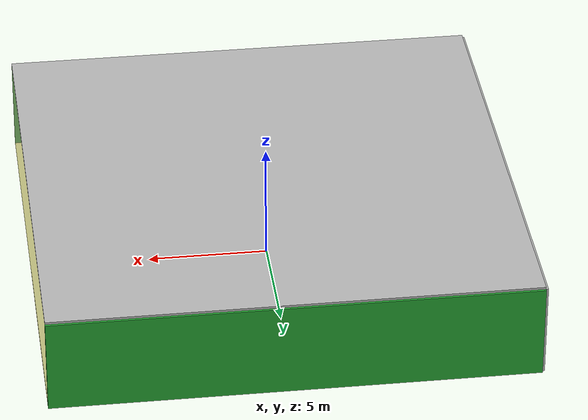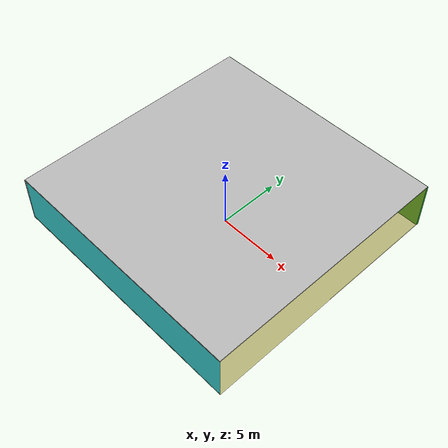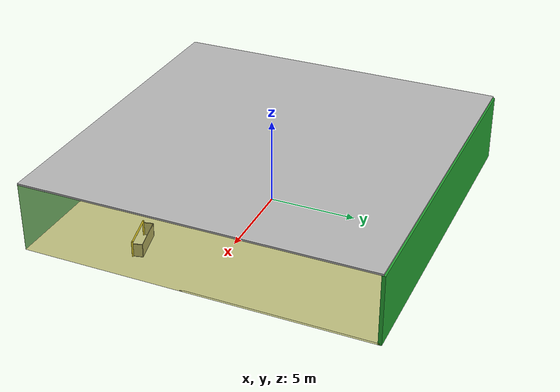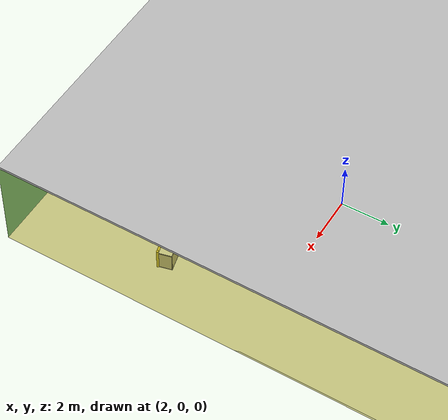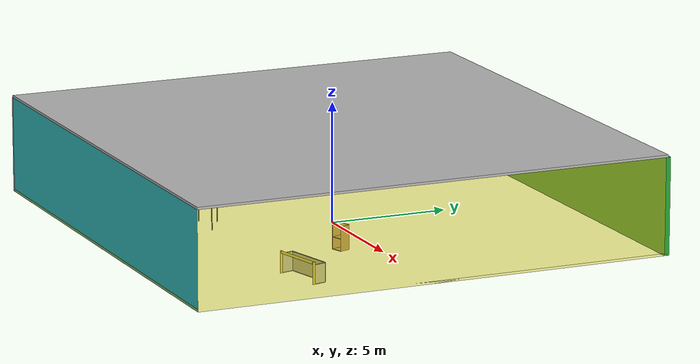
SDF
<sdf version="1.4">
 <world name="default">
  <physics type="ode">
   <max_step_size>0.001</max_step_size>
   <real_time_factor>1</real_time_factor>
   <real_time_update_rate>1000</real_time_update_rate>
   <gravity>0 0 -9.8</gravity>
  </physics>
  <scene><ambient>0.4 0.4 0.4 1</ambient><background>0.7 0.7 0.7 1</background><shadows>1</shadows></scene>
  <model name="Surrounding">
   <static>1</static>
   <link name="Ceiling">
    <collision name="Ceiling_Collision"><geometry><box><size>20 20 0.1</size></box></geometry></collision>
    <visual name="Ceiling_Visual">
     <geometry><box><size>20 20 0.1</size></box></geometry>
     <material>
      <script><uri>file://media/materials/scripts/gazebo.material</uri><name>Gazebo/CloudySky</name></script>
     </material>
    </visual>
    <pose>0 0 4.05 0 0 0</pose>
   </link>
   <link name="Wall_South">
    <collision name="Wall_South_Collision">
     <geometry><box><size>20 0 4</size></box></geometry>
     <pose>0 0 2 0 -0 0</pose>
    </collision>
    <visual name="Wall_South_Visual">
     <pose>0 0 2 0 -0 0</pose>
     <geometry><box><size>20 0 4</size></box></geometry>
     <material>
      <script>
       <uri>file://media/materials/scripts/gazebo.material</uri>
       <name>Gazebo/TurquoiseGlowOutline</name>
      </script>
     </material>
    </visual>
    <velocity_decay><linear>0</linear><angular>0</angular></velocity_decay>
    <pose>0 -10 0 0 -0 0</pose>
   </link>
   <link name="Wall_East">
    <collision name="Wall_21_Collision">
     <geometry><box><size>20 0 4</size></box></geometry>
     <pose>0 0 2 0 -0 0</pose>
    </collision>
    <visual name="Wall_21_Visual">
     <pose>0 0 2 0 -0 0</pose>
     <geometry><box><size>20 0 4</size></box></geometry>
     <material>
      <script>
       <uri>file://media/materials/scripts/gazebo.material</uri>
       <name>Gazebo/YellowTransparent</name>
      </script>
     </material>
    </visual>
    <velocity_decay><linear>0</linear><angular>0</angular></velocity_decay>
    <pose>10 0 0 0 -0 1.5708</pose>
   </link>
   <link name="Wall_North">
    <collision name="Wall_22_Collision">
     <geometry><box><size>20 0.2 4</size></box></geometry>
     <pose>0 0 2 0 -0 0</pose>
    </collision>
    <visual name="Wall_22_Visual">
     <pose>0 0 2 0 -0 0</pose>
     <geometry><box><size>20 0.2 4</size></box></geometry>
     <material>
      <script><uri>file://media/materials/scripts/gazebo.material</uri><name>Gazebo/GreenGlow</name></script>
     </material>
    </visual>
    <velocity_decay><linear>0</linear><angular>0</angular></velocity_decay>
    <pose>0 10 0 0 -0 0</pose>
   </link>
   <link name="Wall_West">
    <collision name="Wall_23_Collision">
     <geometry><box><size>20 0.2 4</size></box></geometry>
     <pose>0 0 2 0 -0 0</pose>
    </collision>
    <visual name="Wall_23_Visual">
     <pose>0 0 2 0 -0 0</pose>
     <geometry><box><size>20 0.2 4</size></box></geometry>
     <material>
      <script><uri>file://media/materials/scripts/gazebo.material</uri><name>Gazebo/Pioneer2Body</name></script>
     </material>
    </visual>
    <velocity_decay><linear>0</linear><angular>0</angular></velocity_decay>
    <pose>-10 0 0 0 0 -1.5708</pose>
   </link>
   <link name="Ground_link">
    <collision name="collision">
     <pose>0 0 .05 0 -0 0</pose>
     <geometry><box><size>20 20 0.1</size></box></geometry>
    </collision>
    <visual name="visual">
     <pose>0 0 .05 0 -0 0</pose>
     <geometry><box><size>20 20 0.1</size></box></geometry>
     <material>
      <script>
       <uri>file://media/materials/scripts/gazebo.material</uri>
       <name>Gazebo/YellowTransparent</name>
      </script>
     </material>
    </visual>
   </link>
   <static>1</static>
  </model>
  <spherical_coordinates>
   <surface_model>EARTH_WGS84</surface_model>
   <latitude_deg>0</latitude_deg>
   <longitude_deg>0</longitude_deg>
   <elevation>0</elevation>
   <heading_deg>0</heading_deg>
  </spherical_coordinates>
  <light name="lightball_0" type="diffuse">
   <diffuse>0.8 0.8 0.8 1</diffuse>
   <specular>0.2 0.2 0.2 1</specular>
   <attenuation>
    <range>100</range>
    <constant>0.7</constant>
    <linear>0.01</linear>
    <quadratic>0.001</quadratic>
   </attenuation>
   <direction>-0.5 0.1 -0.9</direction>
   <pose>-3.38998854018 3.83963972761 0.895900617495 0 0 0</pose>
  </light>
  <light name="lightball_1" type="diffuse">
   <diffuse>0.8 0.8 0.8 1</diffuse>
   <specular>0.2 0.2 0.2 1</specular>
   <attenuation>
    <range>100</range>
    <constant>0.7</constant>
    <linear>0.01</linear>
    <quadratic>0.001</quadratic>
   </attenuation>
   <direction>-0.5 0.1 -0.9</direction>
   <pose>3.22740713645 -0.612443008691 1.36135031206 0 0 0</pose>
  </light>
  <light name="lightball_2" type="diffuse">
   <diffuse>0.8 0.8 0.8 1</diffuse>
   <specular>0.2 0.2 0.2 1</specular>
   <attenuation>
    <range>100</range>
    <constant>0.7</constant>
    <linear>0.01</linear>
    <quadratic>0.001</quadratic>
   </attenuation>
   <direction>-0.5 0.1 -0.9</direction>
   <pose>-8.76905242569 -2.32271050025 3.45305714546 0 0 0</pose>
  </light>
  <light name="lightball_3" type="diffuse">
   <diffuse>0.8 0.8 0.8 1</diffuse>
   <specular>0.2 0.2 0.2 1</specular>
   <attenuation>
    <range>100</range>
    <constant>0.7</constant>
    <linear>0.01</linear>
    <quadratic>0.001</quadratic>
   </attenuation>
   <direction>-0.5 0.1 -0.9</direction>
   <pose>-5.4628934749 -2.62304962379 0.57881930966 0 0 0</pose>
  </light>
  <light name="lightball_4" type="diffuse">
   <diffuse>0.8 0.8 0.8 1</diffuse>
   <specular>0.2 0.2 0.2 1</specular>
   <attenuation>
    <range>100</range>
    <constant>0.7</constant>
    <linear>0.01</linear>
    <quadratic>0.001</quadratic>
   </attenuation>
   <direction>-0.5 0.1 -0.9</direction>
   <pose>-0.379095794263 -4.97031451942 3.10655579573 0 0 0</pose>
  </light>
  <light name="lightball_5" type="diffuse">
   <diffuse>0.8 0.8 0.8 1</diffuse>
   <specular>0.2 0.2 0.2 1</specular>
   <attenuation>
    <range>100</range>
    <constant>0.7</constant>
    <linear>0.01</linear>
    <quadratic>0.001</quadratic>
   </attenuation>
   <direction>-0.5 0.1 -0.9</direction>
   <pose>-9.00534578599 4.11268068716 0.814010855628 0 0 0</pose>
  </light>
  <light name="lightball_6" type="diffuse">
   <diffuse>0.8 0.8 0.8 1</diffuse>
   <specular>0.2 0.2 0.2 1</specular>
   <attenuation>
    <range>100</range>
    <constant>0.7</constant>
    <linear>0.01</linear>
    <quadratic>0.001</quadratic>
   </attenuation>
   <direction>-0.5 0.1 -0.9</direction>
   <pose>-9.89569588616 -0.548818755995 1.94435988122 0 0 0</pose>
  </light>
  <light name="lightball_7" type="diffuse">
   <diffuse>0.8 0.8 0.8 1</diffuse>
   <specular>0.2 0.2 0.2 1</specular>
   <attenuation>
    <range>100</range>
    <constant>0.7</constant>
    <linear>0.01</linear>
    <quadratic>0.001</quadratic>
   </attenuation>
   <direction>-0.5 0.1 -0.9</direction>
   <pose>-5.58116218805 7.61043535696 3.05538785572 0 0 0</pose>
  </light>
  <light name="lightball_8" type="diffuse">
   <diffuse>0.8 0.8 0.8 1</diffuse>
   <specular>0.2 0.2 0.2 1</specular>
   <attenuation>
    <range>100</range>
    <constant>0.7</constant>
    <linear>0.01</linear>
    <quadratic>0.001</quadratic>
   </attenuation>
   <direction>-0.5 0.1 -0.9</direction>
   <pose>-1.28897041551 2.86912423254 3.02364175184 0 0 0</pose>
  </light>
  <light name="lightball_9" type="diffuse">
   <diffuse>0.8 0.8 0.8 1</diffuse>
   <specular>0.2 0.2 0.2 1</specular>
   <attenuation>
    <range>100</range>
    <constant>0.7</constant>
    <linear>0.01</linear>
    <quadratic>0.001</quadratic>
   </attenuation>
   <direction>-0.5 0.1 -0.9</direction>
   <pose>-0.436549763163 2.30903160716 2.3865970546 0 0 0</pose>
  </light>
  <include><uri>model://table</uri><pose>-7.08166175223 -4.59698040258 0 0 0 2.67932408346</pose></include>
  <include><uri>model://table</uri><pose>-1.66479649216 -4.87404818642 0 0 0 2.5900479121</pose></include>
  <include><uri>model://cabinet</uri><pose>3.9067243495 -1.36981785778 0 0 0 1.90063986901</pose></include>
  <include>
   <uri>model://robocup_3Dsim_goal</uri>
   <pose>7.20201450517 -4.67514828199 0 0 0 1.80705374969</pose>
  </include>
 </world>
</sdf>

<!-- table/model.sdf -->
<sdf version="1.5">
  <model name="table">
    <static>true</static>
    <link name="link">
      <collision name="surface">
        <pose>0 0 1.0 0 0 0</pose>
        <geometry>
          <box>
            <size>1.5 0.8 0.03</size>
          </box>
        </geometry>
        <surface>
          <friction>
            <ode>
              <mu>0.6</mu>
              <mu2>0.6</mu2>
            </ode>
          </friction>
        </surface>
      </collision>
      <visual name="visual1">
        <pose>0 0 1.0 0 0 0</pose>
        <geometry>
          <box>
            <size>1.5 0.8 0.03</size>
          </box>
        </geometry>
        <material>
          <script>
            <uri>model://media/materials/scripts/gazebo.material</uri>
            <name>Gazebo/Wood</name>
          </script>
        </material>
      </visual>
      <collision name="front_left_leg">
        <pose>0.68 0.38 0.5 0 0 0</pose>
        <geometry>
          <cylinder>
            <radius>0.02</radius>
            <length>1.0</length>
          </cylinder>
        </geometry>
      </collision>
      <visual name="front_left_leg">
        <pose>0.68 0.38 0.5 0 0 0</pose>
        <geometry>
          <cylinder>
            <radius>0.02</radius>
            <length>1.0</length>
          </cylinder>
        </geometry>
        <material>
          <script>
            <uri>model://media/materials/scripts/gazebo.material</uri>
            <name>Gazebo/Grey</name>
          </script>
        </material>
      </visual>
      <collision name="front_right_leg">
        <pose>0.68 -0.38 0.5 0 0 0</pose>
        <geometry>
          <cylinder>
            <radius>0.02</radius>
            <length>1.0</length>
          </cylinder>
        </geometry>
      </collision>
      <visual name="front_right_leg">
        <pose>0.68 -0.38 0.5 0 0 0</pose>
        <geometry>
          <cylinder>
            <radius>0.02</radius>
            <length>1.0</length>
          </cylinder>
        </geometry>
        <material>
          <script>
            <uri>model://media/materials/scripts/gazebo.material</uri>
            <name>Gazebo/Grey</name>
          </script>
        </material>
      </visual>
      <collision name="back_right_leg">
        <pose>-0.68 -0.38 0.5 0 0 0</pose>
        <geometry>
          <cylinder>
            <radius>0.02</radius>
            <length>1.0</length>
          </cylinder>
        </geometry>
      </collision>
      <visual name="back_right_leg">
        <pose>-0.68 -0.38 0.5 0 0 0</pose>
        <geometry>
          <cylinder>
            <radius>0.02</radius>
            <length>1.0</length>
          </cylinder>
        </geometry>
        <material>
          <script>
            <uri>model://media/materials/scripts/gazebo.material</uri>
            <name>Gazebo/Grey</name>
          </script>
        </material>
      </visual>
      <collision name="back_left_leg">
        <pose>-0.68 0.38 0.5 0 0 0</pose>
        <geometry>
          <cylinder>
            <radius>0.02</radius>
            <length>1.0</length>
          </cylinder>
        </geometry>
      </collision>
      <visual name="back_left_leg">
        <pose>-0.68 0.38 0.5 0 0 0</pose>
        <geometry>
          <cylinder>
            <radius>0.02</radius>
            <length>1.0</length>
          </cylinder>
        </geometry>
        <material>
          <script>
            <uri>model://media/materials/scripts/gazebo.material</uri>
            <name>Gazebo/Grey</name>
          </script>
        </material>
      </visual>
    </link>
  </model>
</sdf>

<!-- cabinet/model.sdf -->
<sdf version="1.5">
  <model name="cabinet">
    <static>true</static>
    <link name="cabinet_bottom_plate">
      <inertial>
        <pose>0 0 -1 0 0 0</pose>
        <inertia>
          <ixx>2.050000</ixx>
          <ixy>0</ixy>
          <ixz>0</ixz>
          <iyy>2.050000</iyy>
          <iyz>0</iyz>
          <izz>2.050000</izz>
        </inertia>
        <mass>25.000000</mass>
      </inertial>
      <collision name="cabinet_bottom_plate_geom">
        <pose>0 0 0.010000 0 0 0</pose>
        <geometry>
          <box>
            <size>0.450000 0.450000 0.020000</size>
          </box>
        </geometry>
      </collision>
      <visual name="cabinet_bottom_plate_geom_visual">
        <pose>0 0 0.010000 0 0 0</pose>
        <geometry>
          <box>
            <size>0.450000 0.450000 0.020000</size>
          </box>
        </geometry>
        <material>
          <script>
            <uri>model://media/materials/scripts/gazebo.material</uri>
            <name>Gazebo/Wood</name>
          </script>
        </material>
      </visual>
      <collision name="cabinet_bottom_plate_geom_cabinet_back_plate">
        <pose>0.235000 0 0.510000 0 0 0</pose>
        <geometry>
          <box>
            <size>0.020000 0.450000 1.020000</size>
          </box>
        </geometry>
      </collision>
      <visual name="cabinet_bottom_plate_geom_cabinet_back_plate_visual">
        <pose>0.235000 0 0.510000 0 0 0</pose>
        <geometry>
          <box>
            <size>0.020000 0.450000 1.020000</size>
          </box>
        </geometry>
        <material>
          <script>
            <uri>model://media/materials/scripts/gazebo.material</uri>
            <name>Gazebo/Wood</name>
          </script>
        </material>
      </visual>
      <collision name="cabinet_bottom_plate_geom_cabinet_left_plate">
        <pose>0 0.235000 0.510000 0 0 0</pose>
        <geometry>
          <box>
            <size>0.450000 0.020000 1.020000</size>
          </box>
        </geometry>
      </collision>
      <visual name="cabinet_bottom_plate_geom_cabinet_left_plate_visual">
        <pose>0 0.235000 0.510000 0 0 0</pose>
        <geometry>
          <box>
            <size>0.450000 0.020000 1.020000</size>
          </box>
        </geometry>
        <material>
          <script>
            <uri>model://media/materials/scripts/gazebo.material</uri>
            <name>Gazebo/Wood</name>
          </script>
        </material>
      </visual>
      <collision name="cabinet_bottom_plate_geom_cabinet_middle_plate">
        <pose>0 0 0.510000 0 0 0</pose>
        <geometry>
          <box>
            <size>0.450000 0.450000 0.020000</size>
          </box>
        </geometry>
      </collision>
      <visual name="cabinet_bottom_plate_geom_cabinet_middle_plate_visual">
        <pose>0 0 0.510000 0 0 0</pose>
        <geometry>
          <box>
            <size>0.450000 0.450000 0.020000</size>
          </box>
        </geometry>
        <material>
          <script>
            <uri>model://media/materials/scripts/gazebo.material</uri>
            <name>Gazebo/Wood</name>
          </script>
        </material>
      </visual>
      <collision name="cabinet_bottom_plate_geom_cabinet_right_plate">
        <pose>0 -0.235000 0.510000 0 0 0</pose>
        <geometry>
          <box>
            <size>0.450000 0.020000 1.020000</size>
          </box>
        </geometry>
      </collision>
      <visual name="cabinet_bottom_plate_geom_cabinet_right_plate_visual">
        <pose>0 -0.235000 0.510000 0 0 0</pose>
        <geometry>
          <box>
            <size>0.450000 0.020000 1.020000</size>
          </box>
        </geometry>
        <material>
          <script>
            <uri>model://media/materials/scripts/gazebo.material</uri>
            <name>Gazebo/Wood</name>
          </script>
        </material>
      </visual>
      <collision name="cabinet_bottom_plate_geom_cabinet_top_plate">
        <pose>0 0 1.010000 0 0 0</pose>
        <geometry>
          <box>
            <size>0.450000 0.450000 0.020000</size>
          </box>
        </geometry>
      </collision>
      <visual name="cabinet_bottom_plate_geom_cabinet_top_plate_visual">
        <pose>0 0 1.010000 0 0 0</pose>
        <geometry>
          <box>
            <size>0.450000 0.450000 0.020000</size>
          </box>
        </geometry>
        <material>
          <script>
            <uri>model://media/materials/scripts/gazebo.material</uri>
            <name>Gazebo/Wood</name>
          </script>
        </material>
      </visual>
    </link>
  </model>
</sdf>

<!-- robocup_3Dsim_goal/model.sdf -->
<sdf version="1.5">
  <model name="robocup_3d_goal">
    <static>true</static>
    <link name="left_post">
      <pose>0 1.05 0.45 0 0 0</pose>
      <collision name="collision">
        <geometry>
          <cylinder>
            <radius>0.05</radius>
            <length>0.9</length>
          </cylinder>
        </geometry>
      </collision>
      <visual name="visual">
        <geometry>
          <cylinder>
            <radius>0.05</radius>
            <length>0.9</length>
          </cylinder>
        </geometry>
        <material>
          <script>
            <uri>file://media/materials/scripts/gazebo.material</uri>
            <name>Gazebo/ZincYellow</name>
          </script>
        </material>
      </visual>
    </link>
    <link name="left_support_horiz_lower">
      <pose>0.30 1.05 0.01 0 0 0</pose>
      <collision name="collision">
        <geometry>
          <box>
            <size>0.50 0.02 0.02</size>
          </box>
        </geometry>
      </collision>
      <visual name="visual">
        <geometry>
          <box>
            <size>0.50 0.02 0.02</size>
          </box>
        </geometry>
        <material>
          <script>
            <uri>file://media/materials/scripts/gazebo.material</uri>
            <name>Gazebo/White</name>
          </script>
        </material>
      </visual>
    </link>
    <link name="left_support_horiz_upper">
      <pose>0.30 1.05 0.79 0 0 0</pose>
      <collision name="collision">
        <geometry>
          <box>
            <size>0.50 0.02 0.02</size>
          </box>
        </geometry>
      </collision>
      <visual name="visual">
        <geometry>
          <box>
            <size>0.50 0.02 0.02</size>
          </box>
        </geometry>
        <material>
          <script>
            <uri>file://media/materials/scripts/gazebo.material</uri>
            <name>Gazebo/White</name>
          </script>
        </material>
      </visual>
    </link>
    <link name="left_support_vertical">
      <pose>0.56 1.05 0.4 0 1.5708 0</pose>
      <collision name="collision">
        <geometry>
          <box>
            <size>0.80 0.02 0.02</size>
          </box>
        </geometry>
      </collision>
      <visual name="visual">
        <geometry>
          <box>
            <size>0.80 0.02 0.02</size>
          </box>
        </geometry>
        <material>
          <script>
            <uri>file://media/materials/scripts/gazebo.material</uri>
            <name>Gazebo/White</name>
          </script>
        </material>
      </visual>
    </link>
    <link name="right_support_horiz_lower">
      <pose>0.30 -1.05 0.01 0 0 0</pose>
      <collision name="collision">
        <geometry>
          <box>
            <size>0.50 0.02 0.02</size>
          </box>
        </geometry>
      </collision>
      <visual name="visual">
        <geometry>
          <box>
            <size>0.50 0.02 0.02</size>
          </box>
        </geometry>
        <material>
          <script>
            <uri>file://media/materials/scripts/gazebo.material</uri>
            <name>Gazebo/White</name>
          </script>
        </material>
      </visual>
    </link>
    <link name="right_support_horiz_upper">
      <pose>0.30 -1.05 0.79 0 0 0</pose>
      <collision name="collision">
        <geometry>
          <box>
            <size>0.50 0.02 0.02</size>
          </box>
        </geometry>
      </collision>
      <visual name="visual">
        <geometry>
          <box>
            <size>0.50 0.02 0.02</size>
          </box>
        </geometry>
        <material>
          <script>
            <uri>file://media/materials/scripts/gazebo.material</uri>
            <name>Gazebo/White</name>
          </script>
        </material>
      </visual>
    </link>
    <link name="right_support_vertical">
      <pose>0.56 -1.05 0.4 0 1.5708 0</pose>
      <collision name="collision">
        <geometry>
          <box>
            <size>0.80 0.02 0.02</size>
          </box>
        </geometry>
      </collision>
      <visual name="visual">
        <geometry>
          <box>
            <size>0.80 0.02 0.02</size>
          </box>
        </geometry>
        <material>
          <script>
            <uri>file://media/materials/scripts/gazebo.material</uri>
            <name>Gazebo/White</name>
          </script>
        </material>
      </visual>
    </link>
    <link name="center_support_horiz_lower">
      <pose>0.56 0 0.01 0 1.5708 0</pose>
      <collision name="collision">
        <geometry>
          <box>
            <size>0.02 2.08 0.02</size>
          </box>
        </geometry>
      </collision>
      <visual name="visual">
        <geometry>
          <box>
            <size>0.02 2.08 0.02</size>
          </box>
        </geometry>
        <material>
          <script>
            <uri>file://media/materials/scripts/gazebo.material</uri>
            <name>Gazebo/White</name>
          </script>
        </material>
      </visual>
    </link>
    <link name="center_support_horiz_upper">
      <pose>0.56 0 0.79 0 1.5708 0</pose>
      <collision name="collision">
        <geometry>
          <box>
            <size>0.02 2.08 0.02</size>
          </box>
        </geometry>
      </collision>
      <visual name="visual">
        <geometry>
          <box>
            <size>0.02 2.08 0.02</size>
          </box>
        </geometry>
        <material>
          <script>
            <uri>file://media/materials/scripts/gazebo.material</uri>
            <name>Gazebo/White</name>
          </script>
        </material>
      </visual>
    </link>
    <link name="right_post">
      <pose>0 -1.05 0.45 0 0 0</pose>
      <collision name="collision">
        <geometry>
          <cylinder>
            <radius>0.05</radius>
            <length>0.9</length>
          </cylinder>
        </geometry>
      </collision>
      <visual name="visual">
        <geometry>
          <cylinder>
            <radius>0.05</radius>
            <length>0.9</length>
          </cylinder>
        </geometry>
        <material>
          <script>
            <uri>file://media/materials/scripts/gazebo.material</uri>
            <name>Gazebo/ZincYellow</name>
          </script>
        </material>
      </visual>
    </link>
    <link name="crossbar">
      <pose>0 0 0.85 1.57 1.57 0</pose>
      <collision name="collision">
        <geometry>
          <cylinder>
            <radius>0.05</radius>
            <length>2.0</length>
          </cylinder>
        </geometry>
      </collision>
      <visual name="visual">
        <geometry>
          <cylinder>
            <radius>0.05</radius>
            <length>2.0</length>
          </cylinder>
        </geometry>
        <material>
          <script>
            <uri>file://media/materials/scripts/gazebo.material</uri>
            <name>Gazebo/ZincYellow</name>
          </script>
        </material>
      </visual>
    </link>
    <link name="center_net">
      <pose>0.56 0 0.40 0 0 0</pose>
      <collision name="collision">
        <geometry>
          <box>
            <size>0.01 2.1 0.80</size>
          </box>
        </geometry>
      </collision>
      <visual name="visual">
        <geometry>
          <box>
            <size>0.01 2.1 0.80</size>
          </box>
        </geometry>
        <material>
          <script>
            <uri>model://../model_source/models/robocup09_spl_field/materials/scripts/</uri>
            <uri>model://../model_source/models/robocup09_spl_field/materials/textures/</uri>
            <name>RoboCup/Net</name>
          </script>
        </material>
      </visual>
    </link>
    <link name="left_net">
      <pose>0.30 1.05 0.40 0 0 0</pose>
      <collision name="collision">
        <geometry>
          <box>
            <size>0.50 0.01 0.76</size>
          </box>
        </geometry>
      </collision>
      <visual name="visual">
        <geometry>
          <box>
            <size>0.50 0.01 0.76</size>
          </box>
        </geometry>
        <material>
          <script>
            <uri>model://../model_source/models/robocup09_spl_field/materials/scripts/</uri>
            <uri>model://../model_source/models/robocup09_spl_field/materials/textures/</uri>
            <name>RoboCup/Net</name>
          </script>
        </material>
      </visual>
    </link>
    <link name="right_net">
      <pose>0.30 -1.05 0.40 0 0 0</pose>
      <collision name="collision">
        <geometry>
          <box>
            <size>0.50 0.01 0.76</size>
          </box>
        </geometry>
      </collision>
      <visual name="visual">
        <geometry>
          <box>
            <size>0.50 0.01 0.76</size>
          </box>
        </geometry>
        <material>
          <script>
            <uri>model://../model_source/models/robocup09_spl_field/materials/scripts/</uri>
            <uri>model://../model_source/models/robocup09_spl_field/materials/textures/</uri>
            <name>RoboCup/Net</name>
          </script>
        </material>
      </visual>
    </link>
  </model>
</sdf>
